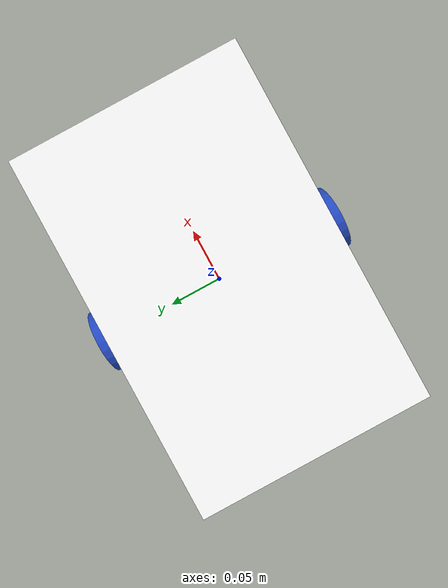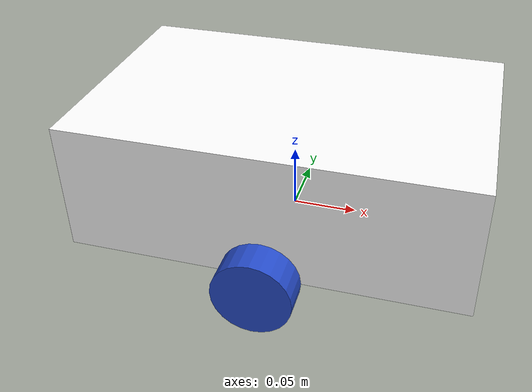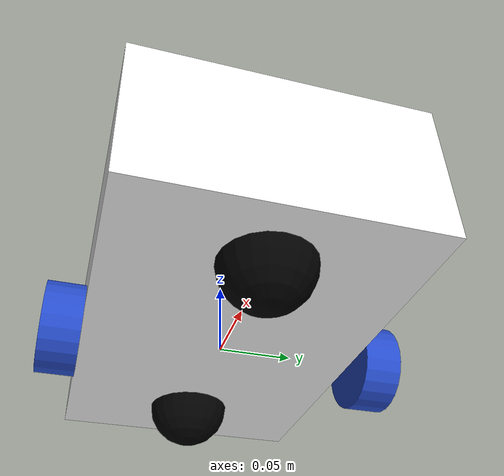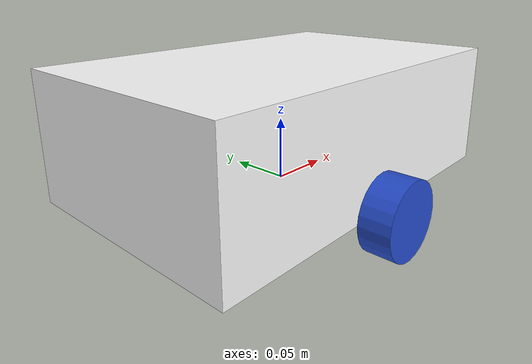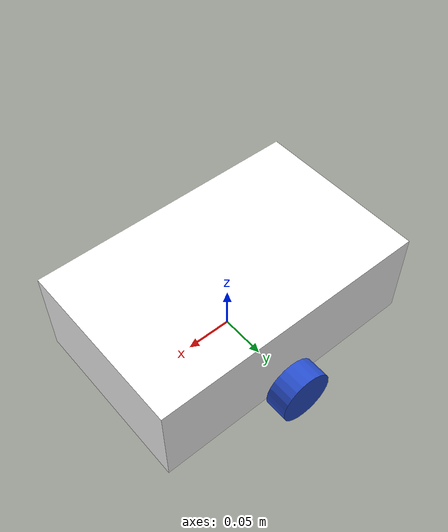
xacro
<?xml version="1.0"?>
<robot xmlns:xacro="http://www.ros.org/wiki/xacro"  name="robot">

    <xacro:arg name="use_ros2_control" default="true" />

    <!-- Import external xacro files -->
    <xacro:include filename="robot_core.xacro" />

    <xacro:if value="$(arg use_ros2_control)">
        <xacro:include filename="ros2_control.xacro" />
    </xacro:if>

    <xacro:unless value="$(arg use_ros2_control)">
        <xacro:include filename="gazebo_control.xacro" />
    </xacro:unless>

</robot>

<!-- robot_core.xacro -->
<robot xmlns:xacro="http://www.ros.org/wiki/xacro">

    <!-- Include external files -->
    <xacro:include filename="inertial_macros.xacro" />

    <material name="white">
        <color rgba="1 1 1 1" />
    </material>

    <material name="orange">
        <color rgba="1 0.3 0.1 1" />
    </material>

    <material name="blue">
        <color rgba="0.2 0.2 1 1" />
    </material>

    <material name="black">
        <color rgba="0 0 0 1" />
    </material>

    <!-- Base Link -->
    <link name="base_link">

    </link>

    <!-- Chassis Link -->
    <joint name="chassis_joint" type="fixed">
        <parent link="base_link" />
        <child link="chassis" />
        <origin xyz="-0.15 0 0" />
    </joint>

    <link name="chassis">
        <visual>
            <origin xyz="0.15 0 0.05" />
            <geometry>
                <box size="0.3 0.19 0.1" />
            </geometry>
            <material name="white" />
        </visual>
        <collision>
            <origin xyz="0.15 0 0.05" />
            <geometry>
                <box size="0.3 0.19 0.1" />
            </geometry>
        </collision>
        <xacro:inertial_box mass="0.5" x="0.3" y="0.19" z="0.1">
            <origin xyz="0.15 0 0.05" rpy="0 0 0" />
        </xacro:inertial_box>
    </link>

    <gazebo reference="chassis">
        <material>Gazebo/White</material>
    </gazebo>

    <!-- Actuating Left Wheel Link -->
    <joint name="left_wheel_joint" type="continuous">
        <parent link="base_link" />
        <child link="left_wheel" />
        <origin xyz="0 0.095 0" rpy="-${pi/2} 0 0" />
        <axis xyz="0 0 1" />
    </joint>

    <link name="left_wheel">
        <visual>
            <origin xyz="0 0 0.0125" />
            <geometry>
                <cylinder radius="0.03" length="0.025" />
                <material name="blue" />
            </geometry>
        </visual>
        <collision>
            <origin xyz="0 0 0.0125" />
            <geometry>
                <cylinder radius="0.03" length="0.025" />
            </geometry>
        </collision>
        <xacro:inertial_cylinder mass="0.1" radius="0.03" length="0.025">
            <origin xyz="0 0 0.0125" rpy="0 0 0" />
        </xacro:inertial_cylinder>
    </link>

    <gazebo reference="left_wheel">
        <material>Gazebo/Blue</material>
    </gazebo>

    <!-- Actuating Right Wheel Link -->
    <joint name="right_wheel_joint" type="continuous">
        <parent link="base_link" />
        <child link="right_wheel" />
        <origin xyz="0 -0.095 0" rpy="${pi/2} 0 0" />
        <axis xyz="0 0 -1" />
    </joint>

    <link name="right_wheel">
        <visual>
            <origin xyz="0 0 0.0125" />
            <geometry>
                <cylinder radius="0.03" length="0.025" />
                <material name="blue" />
            </geometry>
        </visual>
        <collision>
            <origin xyz="0 0 0.0125" />
            <geometry>
                <cylinder radius="0.03" length="0.025" />
            </geometry>
        </collision>
        <xacro:inertial_cylinder mass="0.1" radius="0.03" length="0.025">
            <origin xyz="0 0 0.0125" rpy="0 0 0" />
        </xacro:inertial_cylinder>
    </link>

    <gazebo reference="right_wheel">
        <material>Gazebo/Blue</material>
    </gazebo>

    <!-- Front caster wheel -->
    <joint name="front_caster_wheel_joint" type="fixed">
        <parent link="chassis" />
        <child link="front_caster_wheel" />
        <origin xyz="0.25 0 0" />
    </joint>

    <link name="front_caster_wheel">
        <visual>
            <geometry>
                <sphere radius="0.03" />
            </geometry>
            <material name="black" />
        </visual>
        <collision>
            <geometry>
                <sphere radius="0.03" />
            </geometry>
        </collision>
        <xacro:inertial_sphere mass="0.1" radius="0.03">
            <origin xyz="0 0 0" rpy="0 0 0" />
        </xacro:inertial_sphere>
    </link>

    <gazebo reference="front_caster_wheel">
        <material>Gazebo/Black</material>
        <mu1 value="0.001" />
        <mu2 value="0.001" />
    </gazebo>

    <!-- Rear caster wheel -->
    <joint name="rear_caster_wheel_joint" type="fixed">
        <parent link="chassis" />
        <child link="rear_caster_wheel" />
        <origin xyz="0.05 0 0" />
    </joint>

    <link name="rear_caster_wheel">
        <visual>
            <geometry>
                <sphere radius="0.03" />
            </geometry>
            <material name="black" />
        </visual>
        <collision>
            <geometry>
                <sphere radius="0.03" />
            </geometry>
        </collision>
        <xacro:inertial_sphere mass="0.1" radius="0.03">
            <origin xyz="0 0 0" rpy="0 0 0" />
        </xacro:inertial_sphere>
    </link>

    <gazebo reference="rear_caster_wheel">
        <material>Gazebo/Black</material>
        <mu1 value="0.001" />
        <mu2 value="0.001" />
    </gazebo>

</robot>
